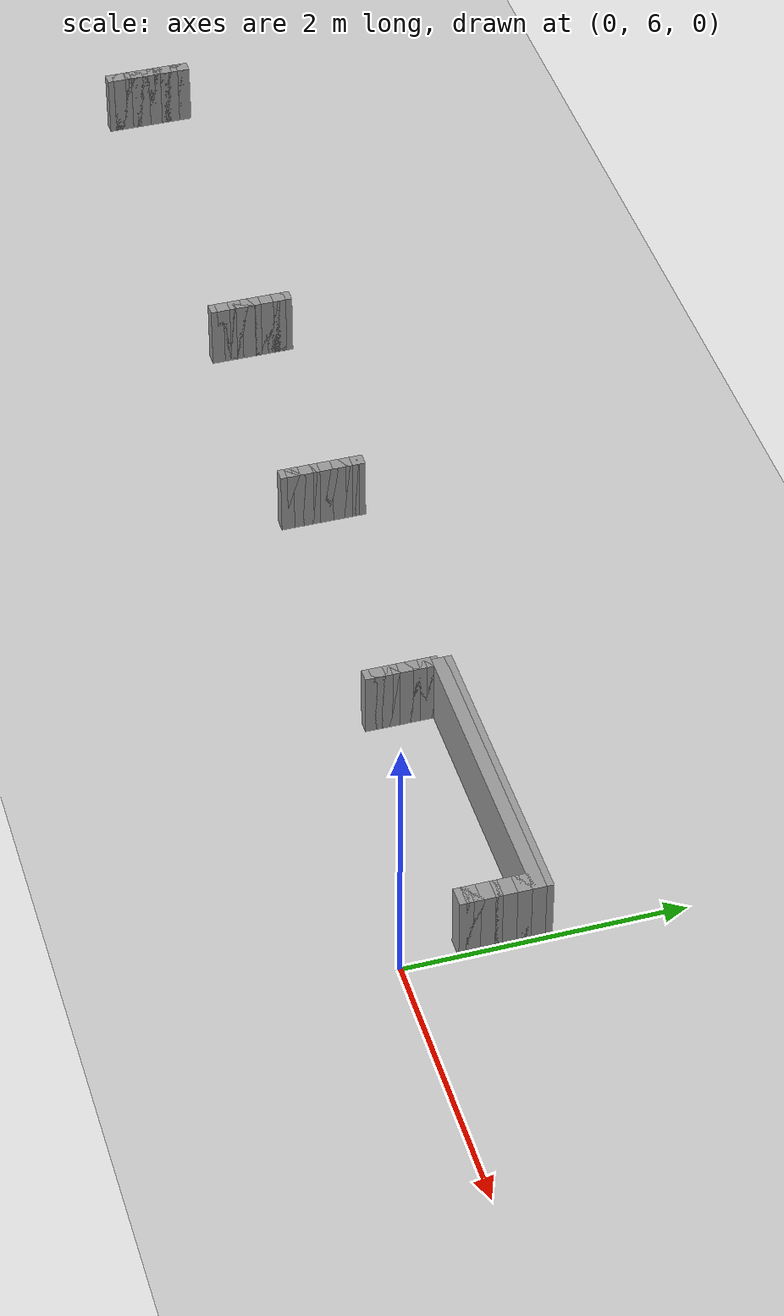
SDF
<sdf version="1.6">
 <world name="GridMap">
  <include><uri>model://sun</uri></include>
  <include><uri>model://ground_plane</uri></include>
  <model name="GridMap">
   <link name="Wall_(198.0,128.0)">
    <collision name="Wall_(198.0,128.0)_Collision">
     <geometry><box><size>0.1 0.1 0.5</size></box></geometry>
     <pose>-9.9 6.4 0.25 0 -0 0</pose>
    </collision>
    <inertial>
     <mass>0.5</mass>
     <pose>0 0.01 0 0 0 0</pose>
     <inertia><ixx>0.004</ixx><ixy>0.001</ixy><ixz>0</ixz><iyy>0.006</iyy><iyz>0</iyz><izz>0.007</izz></inertia>
    </inertial>
    <visual name="Wall_(198.0,128.0)_Visual">
     <geometry><box><size>0.1 0.1 0.5</size></box></geometry>
     <pose>-9.9 6.4 0.25 0 -0 0</pose>
     <material>
      <script><uri>file://media/materials/scripts/gazebo.material</uri><name>Gazebo/Grey</name></script>
      <ambient>1 1 1 1</ambient>
     </material>
     <meta><layer>0</layer></meta>
    </visual>
   </link>
   <link name="Wall_(1.5,129.0)">
    <collision name="Wall_(1.5,129.0)_Collision">
     <geometry><box><size>0.15000000000000002 0.1 0.5</size></box></geometry>
     <pose>-0.07500000000000001 6.45 0.25 0 -0 0</pose>
    </collision>
    <inertial>
     <mass>0.5</mass>
     <pose>0 0.01 0 0 0 0</pose>
     <inertia><ixx>0.004</ixx><ixy>0.001</ixy><ixz>0</ixz><iyy>0.006</iyy><iyz>0</iyz><izz>0.007</izz></inertia>
    </inertial>
    <visual name="Wall_(1.5,129.0)_Visual">
     <geometry><box><size>0.15000000000000002 0.1 0.5</size></box></geometry>
     <pose>-0.07500000000000001 6.45 0.25 0 -0 0</pose>
     <material>
      <script><uri>file://media/materials/scripts/gazebo.material</uri><name>Gazebo/Grey</name></script>
      <ambient>1 1 1 1</ambient>
     </material>
     <meta><layer>0</layer></meta>
    </visual>
   </link>
   <link name="Wall_(45.5,129.0)">
    <collision name="Wall_(45.5,129.0)_Collision">
     <geometry><box><size>0.1 0.1 0.5</size></box></geometry>
     <pose>-2.275 6.45 0.25 0 -0 0</pose>
    </collision>
    <inertial>
     <mass>0.5</mass>
     <pose>0 0.01 0 0 0 0</pose>
     <inertia><ixx>0.004</ixx><ixy>0.001</ixy><ixz>0</ixz><iyy>0.006</iyy><iyz>0</iyz><izz>0.007</izz></inertia>
    </inertial>
    <visual name="Wall_(45.5,129.0)_Visual">
     <geometry><box><size>0.1 0.1 0.5</size></box></geometry>
     <pose>-2.275 6.45 0.25 0 -0 0</pose>
     <material>
      <script><uri>file://media/materials/scripts/gazebo.material</uri><name>Gazebo/Grey</name></script>
      <ambient>1 1 1 1</ambient>
     </material>
     <meta><layer>0</layer></meta>
    </visual>
   </link>
   <link name="Wall_(90.5,129.0)">
    <collision name="Wall_(90.5,129.0)_Collision">
     <geometry><box><size>0.1 0.1 0.5</size></box></geometry>
     <pose>-4.525 6.45 0.25 0 -0 0</pose>
    </collision>
    <inertial>
     <mass>0.5</mass>
     <pose>0 0.01 0 0 0 0</pose>
     <inertia><ixx>0.004</ixx><ixy>0.001</ixy><ixz>0</ixz><iyy>0.006</iyy><iyz>0</iyz><izz>0.007</izz></inertia>
    </inertial>
    <visual name="Wall_(90.5,129.0)_Visual">
     <geometry><box><size>0.1 0.1 0.5</size></box></geometry>
     <pose>-4.525 6.45 0.25 0 -0 0</pose>
     <material>
      <script><uri>file://media/materials/scripts/gazebo.material</uri><name>Gazebo/Grey</name></script>
      <ambient>1 1 1 1</ambient>
     </material>
     <meta><layer>0</layer></meta>
    </visual>
   </link>
   <link name="Wall_(132.0,129.0)">
    <collision name="Wall_(132.0,129.0)_Collision">
     <geometry><box><size>0.1 0.1 0.5</size></box></geometry>
     <pose>-6.6000000000000005 6.45 0.25 0 -0 0</pose>
    </collision>
    <inertial>
     <mass>0.5</mass>
     <pose>0 0.01 0 0 0 0</pose>
     <inertia><ixx>0.004</ixx><ixy>0.001</ixy><ixz>0</ixz><iyy>0.006</iyy><iyz>0</iyz><izz>0.007</izz></inertia>
    </inertial>
    <visual name="Wall_(132.0,129.0)_Visual">
     <geometry><box><size>0.1 0.1 0.5</size></box></geometry>
     <pose>-6.6000000000000005 6.45 0.25 0 -0 0</pose>
     <material>
      <script><uri>file://media/materials/scripts/gazebo.material</uri><name>Gazebo/Grey</name></script>
      <ambient>1 1 1 1</ambient>
     </material>
     <meta><layer>0</layer></meta>
    </visual>
   </link>
   <link name="Wall_(198.0,129.0)">
    <collision name="Wall_(198.0,129.0)_Collision">
     <geometry><box><size>0.1 0.1 0.5</size></box></geometry>
     <pose>-9.9 6.45 0.25 0 -0 0</pose>
    </collision>
    <inertial>
     <mass>0.5</mass>
     <pose>0 0.01 0 0 0 0</pose>
     <inertia><ixx>0.004</ixx><ixy>0.001</ixy><ixz>0</ixz><iyy>0.006</iyy><iyz>0</iyz><izz>0.007</izz></inertia>
    </inertial>
    <visual name="Wall_(198.0,129.0)_Visual">
     <geometry><box><size>0.1 0.1 0.5</size></box></geometry>
     <pose>-9.9 6.45 0.25 0 -0 0</pose>
     <material>
      <script><uri>file://media/materials/scripts/gazebo.material</uri><name>Gazebo/Grey</name></script>
      <ambient>1 1 1 1</ambient>
     </material>
     <meta><layer>0</layer></meta>
    </visual>
   </link>
   <link name="Wall_(1.5,130.0)">
    <collision name="Wall_(1.5,130.0)_Collision">
     <geometry><box><size>0.15000000000000002 0.1 0.5</size></box></geometry>
     <pose>-0.07500000000000001 6.5 0.25 0 -0 0</pose>
    </collision>
    <inertial>
     <mass>0.5</mass>
     <pose>0 0.01 0 0 0 0</pose>
     <inertia><ixx>0.004</ixx><ixy>0.001</ixy><ixz>0</ixz><iyy>0.006</iyy><iyz>0</iyz><izz>0.007</izz></inertia>
    </inertial>
    <visual name="Wall_(1.5,130.0)_Visual">
     <geometry><box><size>0.15000000000000002 0.1 0.5</size></box></geometry>
     <pose>-0.07500000000000001 6.5 0.25 0 -0 0</pose>
     <material>
      <script><uri>file://media/materials/scripts/gazebo.material</uri><name>Gazebo/Grey</name></script>
      <ambient>1 1 1 1</ambient>
     </material>
     <meta><layer>0</layer></meta>
    </visual>
   </link>
   <link name="Wall_(45.5,130.0)">
    <collision name="Wall_(45.5,130.0)_Collision">
     <geometry><box><size>0.1 0.1 0.5</size></box></geometry>
     <pose>-2.275 6.5 0.25 0 -0 0</pose>
    </collision>
    <inertial>
     <mass>0.5</mass>
     <pose>0 0.01 0 0 0 0</pose>
     <inertia><ixx>0.004</ixx><ixy>0.001</ixy><ixz>0</ixz><iyy>0.006</iyy><iyz>0</iyz><izz>0.007</izz></inertia>
    </inertial>
    <visual name="Wall_(45.5,130.0)_Visual">
     <geometry><box><size>0.1 0.1 0.5</size></box></geometry>
     <pose>-2.275 6.5 0.25 0 -0 0</pose>
     <material>
      <script><uri>file://media/materials/scripts/gazebo.material</uri><name>Gazebo/Grey</name></script>
      <ambient>1 1 1 1</ambient>
     </material>
     <meta><layer>0</layer></meta>
    </visual>
   </link>
   <link name="Wall_(90.5,130.0)">
    <collision name="Wall_(90.5,130.0)_Collision">
     <geometry><box><size>0.1 0.1 0.5</size></box></geometry>
     <pose>-4.525 6.5 0.25 0 -0 0</pose>
    </collision>
    <inertial>
     <mass>0.5</mass>
     <pose>0 0.01 0 0 0 0</pose>
     <inertia><ixx>0.004</ixx><ixy>0.001</ixy><ixz>0</ixz><iyy>0.006</iyy><iyz>0</iyz><izz>0.007</izz></inertia>
    </inertial>
    <visual name="Wall_(90.5,130.0)_Visual">
     <geometry><box><size>0.1 0.1 0.5</size></box></geometry>
     <pose>-4.525 6.5 0.25 0 -0 0</pose>
     <material>
      <script><uri>file://media/materials/scripts/gazebo.material</uri><name>Gazebo/Grey</name></script>
      <ambient>1 1 1 1</ambient>
     </material>
     <meta><layer>0</layer></meta>
    </visual>
   </link>
   <link name="Wall_(132.0,130.0)">
    <collision name="Wall_(132.0,130.0)_Collision">
     <geometry><box><size>0.1 0.1 0.5</size></box></geometry>
     <pose>-6.6000000000000005 6.5 0.25 0 -0 0</pose>
    </collision>
    <inertial>
     <mass>0.5</mass>
     <pose>0 0.01 0 0 0 0</pose>
     <inertia><ixx>0.004</ixx><ixy>0.001</ixy><ixz>0</ixz><iyy>0.006</iyy><iyz>0</iyz><izz>0.007</izz></inertia>
    </inertial>
    <visual name="Wall_(132.0,130.0)_Visual">
     <geometry><box><size>0.1 0.1 0.5</size></box></geometry>
     <pose>-6.6000000000000005 6.5 0.25 0 -0 0</pose>
     <material>
      <script><uri>file://media/materials/scripts/gazebo.material</uri><name>Gazebo/Grey</name></script>
      <ambient>1 1 1 1</ambient>
     </material>
     <meta><layer>0</layer></meta>
    </visual>
   </link>
   <link name="Wall_(198.0,130.0)">
    <collision name="Wall_(198.0,130.0)_Collision">
     <geometry><box><size>0.1 0.1 0.5</size></box></geometry>
     <pose>-9.9 6.5 0.25 0 -0 0</pose>
    </collision>
    <inertial>
     <mass>0.5</mass>
     <pose>0 0.01 0 0 0 0</pose>
     <inertia><ixx>0.004</ixx><ixy>0.001</ixy><ixz>0</ixz><iyy>0.006</iyy><iyz>0</iyz><izz>0.007</izz></inertia>
    </inertial>
    <visual name="Wall_(198.0,130.0)_Visual">
     <geometry><box><size>0.1 0.1 0.5</size></box></geometry>
     <pose>-9.9 6.5 0.25 0 -0 0</pose>
     <material>
      <script><uri>file://media/materials/scripts/gazebo.material</uri><name>Gazebo/Grey</name></script>
      <ambient>1 1 1 1</ambient>
     </material>
     <meta><layer>0</layer></meta>
    </visual>
   </link>
   <link name="Wall_(1.5,131.0)">
    <collision name="Wall_(1.5,131.0)_Collision">
     <geometry><box><size>0.15000000000000002 0.1 0.5</size></box></geometry>
     <pose>-0.07500000000000001 6.550000000000001 0.25 0 -0 0</pose>
    </collision>
    <inertial>
     <mass>0.5</mass>
     <pose>0 0.01 0 0 0 0</pose>
     <inertia><ixx>0.004</ixx><ixy>0.001</ixy><ixz>0</ixz><iyy>0.006</iyy><iyz>0</iyz><izz>0.007</izz></inertia>
    </inertial>
    <visual name="Wall_(1.5,131.0)_Visual">
     <geometry><box><size>0.15000000000000002 0.1 0.5</size></box></geometry>
     <pose>-0.07500000000000001 6.550000000000001 0.25 0 -0 0</pose>
     <material>
      <script><uri>file://media/materials/scripts/gazebo.material</uri><name>Gazebo/Grey</name></script>
      <ambient>1 1 1 1</ambient>
     </material>
     <meta><layer>0</layer></meta>
    </visual>
   </link>
   <link name="Wall_(45.5,131.0)">
    <collision name="Wall_(45.5,131.0)_Collision">
     <geometry><box><size>0.1 0.1 0.5</size></box></geometry>
     <pose>-2.275 6.550000000000001 0.25 0 -0 0</pose>
    </collision>
    <inertial>
     <mass>0.5</mass>
     <pose>0 0.01 0 0 0 0</pose>
     <inertia><ixx>0.004</ixx><ixy>0.001</ixy><ixz>0</ixz><iyy>0.006</iyy><iyz>0</iyz><izz>0.007</izz></inertia>
    </inertial>
    <visual name="Wall_(45.5,131.0)_Visual">
     <geometry><box><size>0.1 0.1 0.5</size></box></geometry>
     <pose>-2.275 6.550000000000001 0.25 0 -0 0</pose>
     <material>
      <script><uri>file://media/materials/scripts/gazebo.material</uri><name>Gazebo/Grey</name></script>
      <ambient>1 1 1 1</ambient>
     </material>
     <meta><layer>0</layer></meta>
    </visual>
   </link>
   <link name="Wall_(90.5,131.0)">
    <collision name="Wall_(90.5,131.0)_Collision">
     <geometry><box><size>0.1 0.1 0.5</size></box></geometry>
     <pose>-4.525 6.550000000000001 0.25 0 -0 0</pose>
    </collision>
    <inertial>
     <mass>0.5</mass>
     <pose>0 0.01 0 0 0 0</pose>
     <inertia><ixx>0.004</ixx><ixy>0.001</ixy><ixz>0</ixz><iyy>0.006</iyy><iyz>0</iyz><izz>0.007</izz></inertia>
    </inertial>
    <visual name="Wall_(90.5,131.0)_Visual">
     <geometry><box><size>0.1 0.1 0.5</size></box></geometry>
     <pose>-4.525 6.550000000000001 0.25 0 -0 0</pose>
     <material>
      <script><uri>file://media/materials/scripts/gazebo.material</uri><name>Gazebo/Grey</name></script>
      <ambient>1 1 1 1</ambient>
     </material>
     <meta><layer>0</layer></meta>
    </visual>
   </link>
   <link name="Wall_(132.0,131.0)">
    <collision name="Wall_(132.0,131.0)_Collision">
     <geometry><box><size>0.1 0.1 0.5</size></box></geometry>
     <pose>-6.6000000000000005 6.550000000000001 0.25 0 -0 0</pose>
    </collision>
    <inertial>
     <mass>0.5</mass>
     <pose>0 0.01 0 0 0 0</pose>
     <inertia><ixx>0.004</ixx><ixy>0.001</ixy><ixz>0</ixz><iyy>0.006</iyy><iyz>0</iyz><izz>0.007</izz></inertia>
    </inertial>
    <visual name="Wall_(132.0,131.0)_Visual">
     <geometry><box><size>0.1 0.1 0.5</size></box></geometry>
     <pose>-6.6000000000000005 6.550000000000001 0.25 0 -0 0</pose>
     <material>
      <script><uri>file://media/materials/scripts/gazebo.material</uri><name>Gazebo/Grey</name></script>
      <ambient>1 1 1 1</ambient>
     </material>
     <meta><layer>0</layer></meta>
    </visual>
   </link>
   <link name="Wall_(198.0,131.0)">
    <collision name="Wall_(198.0,131.0)_Collision">
     <geometry><box><size>0.1 0.1 0.5</size></box></geometry>
     <pose>-9.9 6.550000000000001 0.25 0 -0 0</pose>
    </collision>
    <inertial>
     <mass>0.5</mass>
     <pose>0 0.01 0 0 0 0</pose>
     <inertia><ixx>0.004</ixx><ixy>0.001</ixy><ixz>0</ixz><iyy>0.006</iyy><iyz>0</iyz><izz>0.007</izz></inertia>
    </inertial>
    <visual name="Wall_(198.0,131.0)_Visual">
     <geometry><box><size>0.1 0.1 0.5</size></box></geometry>
     <pose>-9.9 6.550000000000001 0.25 0 -0 0</pose>
     <material>
      <script><uri>file://media/materials/scripts/gazebo.material</uri><name>Gazebo/Grey</name></script>
      <ambient>1 1 1 1</ambient>
     </material>
     <meta><layer>0</layer></meta>
    </visual>
   </link>
   <link name="Wall_(1.5,132.0)">
    <collision name="Wall_(1.5,132.0)_Collision">
     <geometry><box><size>0.15000000000000002 0.1 0.5</size></box></geometry>
     <pose>-0.07500000000000001 6.6000000000000005 0.25 0 -0 0</pose>
    </collision>
    <inertial>
     <mass>0.5</mass>
     <pose>0 0.01 0 0 0 0</pose>
     <inertia><ixx>0.004</ixx><ixy>0.001</ixy><ixz>0</ixz><iyy>0.006</iyy><iyz>0</iyz><izz>0.007</izz></inertia>
    </inertial>
    <visual name="Wall_(1.5,132.0)_Visual">
     <geometry><box><size>0.15000000000000002 0.1 0.5</size></box></geometry>
     <pose>-0.07500000000000001 6.6000000000000005 0.25 0 -0 0</pose>
     <material>
      <script><uri>file://media/materials/scripts/gazebo.material</uri><name>Gazebo/Grey</name></script>
      <ambient>1 1 1 1</ambient>
     </material>
     <meta><layer>0</layer></meta>
    </visual>
   </link>
   <link name="Wall_(45.5,132.0)">
    <collision name="Wall_(45.5,132.0)_Collision">
     <geometry><box><size>0.1 0.1 0.5</size></box></geometry>
     <pose>-2.275 6.6000000000000005 0.25 0 -0 0</pose>
    </collision>
    <inertial>
     <mass>0.5</mass>
     <pose>0 0.01 0 0 0 0</pose>
     <inertia><ixx>0.004</ixx><ixy>0.001</ixy><ixz>0</ixz><iyy>0.006</iyy><iyz>0</iyz><izz>0.007</izz></inertia>
    </inertial>
    <visual name="Wall_(45.5,132.0)_Visual">
     <geometry><box><size>0.1 0.1 0.5</size></box></geometry>
     <pose>-2.275 6.6000000000000005 0.25 0 -0 0</pose>
     <material>
      <script><uri>file://media/materials/scripts/gazebo.material</uri><name>Gazebo/Grey</name></script>
      <ambient>1 1 1 1</ambient>
     </material>
     <meta><layer>0</layer></meta>
    </visual>
   </link>
   <link name="Wall_(90.5,132.0)">
    <collision name="Wall_(90.5,132.0)_Collision">
     <geometry><box><size>0.1 0.1 0.5</size></box></geometry>
     <pose>-4.525 6.6000000000000005 0.25 0 -0 0</pose>
    </collision>
    <inertial>
     <mass>0.5</mass>
     <pose>0 0.01 0 0 0 0</pose>
     <inertia><ixx>0.004</ixx><ixy>0.001</ixy><ixz>0</ixz><iyy>0.006</iyy><iyz>0</iyz><izz>0.007</izz></inertia>
    </inertial>
    <visual name="Wall_(90.5,132.0)_Visual">
     <geometry><box><size>0.1 0.1 0.5</size></box></geometry>
     <pose>-4.525 6.6000000000000005 0.25 0 -0 0</pose>
     <material>
      <script><uri>file://media/materials/scripts/gazebo.material</uri><name>Gazebo/Grey</name></script>
      <ambient>1 1 1 1</ambient>
     </material>
     <meta><layer>0</layer></meta>
    </visual>
   </link>
   <link name="Wall_(132.0,132.0)">
    <collision name="Wall_(132.0,132.0)_Collision">
     <geometry><box><size>0.1 0.1 0.5</size></box></geometry>
     <pose>-6.6000000000000005 6.6000000000000005 0.25 0 -0 0</pose>
    </collision>
    <inertial>
     <mass>0.5</mass>
     <pose>0 0.01 0 0 0 0</pose>
     <inertia><ixx>0.004</ixx><ixy>0.001</ixy><ixz>0</ixz><iyy>0.006</iyy><iyz>0</iyz><izz>0.007</izz></inertia>
    </inertial>
    <visual name="Wall_(132.0,132.0)_Visual">
     <geometry><box><size>0.1 0.1 0.5</size></box></geometry>
     <pose>-6.6000000000000005 6.6000000000000005 0.25 0 -0 0</pose>
     <material>
      <script><uri>file://media/materials/scripts/gazebo.material</uri><name>Gazebo/Grey</name></script>
      <ambient>1 1 1 1</ambient>
     </material>
     <meta><layer>0</layer></meta>
    </visual>
   </link>
   <link name="Wall_(198.0,132.0)">
    <collision name="Wall_(198.0,132.0)_Collision">
     <geometry><box><size>0.1 0.1 0.5</size></box></geometry>
     <pose>-9.9 6.6000000000000005 0.25 0 -0 0</pose>
    </collision>
    <inertial>
     <mass>0.5</mass>
     <pose>0 0.01 0 0 0 0</pose>
     <inertia><ixx>0.004</ixx><ixy>0.001</ixy><ixz>0</ixz><iyy>0.006</iyy><iyz>0</iyz><izz>0.007</izz></inertia>
    </inertial>
    <visual name="Wall_(198.0,132.0)_Visual">
     <geometry><box><size>0.1 0.1 0.5</size></box></geometry>
     <pose>-9.9 6.6000000000000005 0.25 0 -0 0</pose>
     <material>
      <script><uri>file://media/materials/scripts/gazebo.material</uri><name>Gazebo/Grey</name></script>
      <ambient>1 1 1 1</ambient>
     </material>
     <meta><layer>0</layer></meta>
    </visual>
   </link>
   <link name="Wall_(1.5,133.0)">
    <collision name="Wall_(1.5,133.0)_Collision">
     <geometry><box><size>0.15000000000000002 0.1 0.5</size></box></geometry>
     <pose>-0.07500000000000001 6.65 0.25 0 -0 0</pose>
    </collision>
    <inertial>
     <mass>0.5</mass>
     <pose>0 0.01 0 0 0 0</pose>
     <inertia><ixx>0.004</ixx><ixy>0.001</ixy><ixz>0</ixz><iyy>0.006</iyy><iyz>0</iyz><izz>0.007</izz></inertia>
    </inertial>
    <visual name="Wall_(1.5,133.0)_Visual">
     <geometry><box><size>0.15000000000000002 0.1 0.5</size></box></geometry>
     <pose>-0.07500000000000001 6.65 0.25 0 -0 0</pose>
     <material>
      <script><uri>file://media/materials/scripts/gazebo.material</uri><name>Gazebo/Grey</name></script>
      <ambient>1 1 1 1</ambient>
     </material>
     <meta><layer>0</layer></meta>
    </visual>
   </link>
   <link name="Wall_(45.5,133.0)">
    <collision name="Wall_(45.5,133.0)_Collision">
     <geometry><box><size>0.1 0.1 0.5</size></box></geometry>
     <pose>-2.275 6.65 0.25 0 -0 0</pose>
    </collision>
    <inertial>
     <mass>0.5</mass>
     <pose>0 0.01 0 0 0 0</pose>
     <inertia><ixx>0.004</ixx><ixy>0.001</ixy><ixz>0</ixz><iyy>0.006</iyy><iyz>0</iyz><izz>0.007</izz></inertia>
    </inertial>
    <visual name="Wall_(45.5,133.0)_Visual">
     <geometry><box><size>0.1 0.1 0.5</size></box></geometry>
     <pose>-2.275 6.65 0.25 0 -0 0</pose>
     <material>
      <script><uri>file://media/materials/scripts/gazebo.material</uri><name>Gazebo/Grey</name></script>
      <ambient>1 1 1 1</ambient>
     </material>
     <meta><layer>0</layer></meta>
    </visual>
   </link>
   <link name="Wall_(90.5,133.0)">
    <collision name="Wall_(90.5,133.0)_Collision">
     <geometry><box><size>0.1 0.1 0.5</size></box></geometry>
     <pose>-4.525 6.65 0.25 0 -0 0</pose>
    </collision>
    <inertial>
     <mass>0.5</mass>
     <pose>0 0.01 0 0 0 0</pose>
     <inertia><ixx>0.004</ixx><ixy>0.001</ixy><ixz>0</ixz><iyy>0.006</iyy><iyz>0</iyz><izz>0.007</izz></inertia>
    </inertial>
    <visual name="Wall_(90.5,133.0)_Visual">
     <geometry><box><size>0.1 0.1 0.5</size></box></geometry>
     <pose>-4.525 6.65 0.25 0 -0 0</pose>
     <material>
      <script><uri>file://media/materials/scripts/gazebo.material</uri><name>Gazebo/Grey</name></script>
      <ambient>1 1 1 1</ambient>
     </material>
     <meta><layer>0</layer></meta>
    </visual>
   </link>
   <link name="Wall_(132.0,133.0)">
    <collision name="Wall_(132.0,133.0)_Collision">
     <geometry><box><size>0.1 0.1 0.5</size></box></geometry>
     <pose>-6.6000000000000005 6.65 0.25 0 -0 0</pose>
    </collision>
    <inertial>
     <mass>0.5</mass>
     <pose>0 0.01 0 0 0 0</pose>
     <inertia><ixx>0.004</ixx><ixy>0.001</ixy><ixz>0</ixz><iyy>0.006</iyy><iyz>0</iyz><izz>0.007</izz></inertia>
    </inertial>
    <visual name="Wall_(132.0,133.0)_Visual">
     <geometry><box><size>0.1 0.1 0.5</size></box></geometry>
     <pose>-6.6000000000000005 6.65 0.25 0 -0 0</pose>
     <material>
      <script><uri>file://media/materials/scripts/gazebo.material</uri><name>Gazebo/Grey</name></script>
      <ambient>1 1 1 1</ambient>
     </material>
     <meta><layer>0</layer></meta>
    </visual>
   </link>
   <link name="Wall_(198.0,133.0)">
    <collision name="Wall_(198.0,133.0)_Collision">
     <geometry><box><size>0.1 0.1 0.5</size></box></geometry>
     <pose>-9.9 6.65 0.25 0 -0 0</pose>
    </collision>
    <inertial>
     <mass>0.5</mass>
     <pose>0 0.01 0 0 0 0</pose>
     <inertia><ixx>0.004</ixx><ixy>0.001</ixy><ixz>0</ixz><iyy>0.006</iyy><iyz>0</iyz><izz>0.007</izz></inertia>
    </inertial>
    <visual name="Wall_(198.0,133.0)_Visual">
     <geometry><box><size>0.1 0.1 0.5</size></box></geometry>
     <pose>-9.9 6.65 0.25 0 -0 0</pose>
     <material>
      <script><uri>file://media/materials/scripts/gazebo.material</uri><name>Gazebo/Grey</name></script>
      <ambient>1 1 1 1</ambient>
     </material>
     <meta><layer>0</layer></meta>
    </visual>
   </link>
   <link name="Wall_(1.5,134.0)">
    <collision name="Wall_(1.5,134.0)_Collision">
     <geometry><box><size>0.15000000000000002 0.1 0.5</size></box></geometry>
     <pose>-0.07500000000000001 6.7 0.25 0 -0 0</pose>
    </collision>
    <inertial>
     <mass>0.5</mass>
     <pose>0 0.01 0 0 0 0</pose>
     <inertia><ixx>0.004</ixx><ixy>0.001</ixy><ixz>0</ixz><iyy>0.006</iyy><iyz>0</iyz><izz>0.007</izz></inertia>
    </inertial>
    <visual name="Wall_(1.5,134.0)_Visual">
     <geometry><box><size>0.15000000000000002 0.1 0.5</size></box></geometry>
     <pose>-0.07500000000000001 6.7 0.25 0 -0 0</pose>
     <material>
      <script><uri>file://media/materials/scripts/gazebo.material</uri><name>Gazebo/Grey</name></script>
      <ambient>1 1 1 1</ambient>
     </material>
     <meta><layer>0</layer></meta>
    </visual>
   </link>
   <link name="Wall_(45.5,134.0)">
    <collision name="Wall_(45.5,134.0)_Collision">
     <geometry><box><size>0.1 0.1 0.5</size></box></geometry>
     <pose>-2.275 6.7 0.25 0 -0 0</pose>
    </collision>
    <inertial>
     <mass>0.5</mass>
     <pose>0 0.01 0 0 0 0</pose>
     <inertia><ixx>0.004</ixx><ixy>0.001</ixy><ixz>0</ixz><iyy>0.006</iyy><iyz>0</iyz><izz>0.007</izz></inertia>
    </inertial>
    <visual name="Wall_(45.5,134.0)_Visual">
     <geometry><box><size>0.1 0.1 0.5</size></box></geometry>
     <pose>-2.275 6.7 0.25 0 -0 0</pose>
     <material>
      <script><uri>file://media/materials/scripts/gazebo.material</uri><name>Gazebo/Grey</name></script>
      <ambient>1 1 1 1</ambient>
     </material>
     <meta><layer>0</layer></meta>
    </visual>
   </link>
   <link name="Wall_(90.5,134.0)">
    <collision name="Wall_(90.5,134.0)_Collision">
     <geometry><box><size>0.1 0.1 0.5</size></box></geometry>
     <pose>-4.525 6.7 0.25 0 -0 0</pose>
    </collision>
    <inertial>
     <mass>0.5</mass>
     <pose>0 0.01 0 0 0 0</pose>
     <inertia><ixx>0.004</ixx><ixy>0.001</ixy><ixz>0</ixz><iyy>0.006</iyy><iyz>0</iyz><izz>0.007</izz></inertia>
    </inertial>
    <visual name="Wall_(90.5,134.0)_Visual">
     <geometry><box><size>0.1 0.1 0.5</size></box></geometry>
     <pose>-4.525 6.7 0.25 0 -0 0</pose>
     <material>
      <script><uri>file://media/materials/scripts/gazebo.material</uri><name>Gazebo/Grey</name></script>
      <ambient>1 1 1 1</ambient>
     </material>
     <meta><layer>0</layer></meta>
    </visual>
   </link>
   <link name="Wall_(132.0,134.0)">
    <collision name="Wall_(132.0,134.0)_Collision">
     <geometry><box><size>0.1 0.1 0.5</size></box></geometry>
     <pose>-6.6000000000000005 6.7 0.25 0 -0 0</pose>
    </collision>
    <inertial>
     <mass>0.5</mass>
     <pose>0 0.01 0 0 0 0</pose>
     <inertia><ixx>0.004</ixx><ixy>0.001</ixy><ixz>0</ixz><iyy>0.006</iyy><iyz>0</iyz><izz>0.007</izz></inertia>
    </inertial>
    <visual name="Wall_(132.0,134.0)_Visual">
     <geometry><box><size>0.1 0.1 0.5</size></box></geometry>
     <pose>-6.6000000000000005 6.7 0.25 0 -0 0</pose>
     <material>
      <script><uri>file://media/materials/scripts/gazebo.material</uri><name>Gazebo/Grey</name></script>
      <ambient>1 1 1 1</ambient>
     </material>
     <meta><layer>0</layer></meta>
    </visual>
   </link>
   <link name="Wall_(198.0,134.0)">
    <collision name="Wall_(198.0,134.0)_Collision">
     <geometry><box><size>0.1 0.1 0.5</size></box></geometry>
     <pose>-9.9 6.7 0.25 0 -0 0</pose>
    </collision>
    <inertial>
     <mass>0.5</mass>
     <pose>0 0.01 0 0 0 0</pose>
     <inertia><ixx>0.004</ixx><ixy>0.001</ixy><ixz>0</ixz><iyy>0.006</iyy><iyz>0</iyz><izz>0.007</izz></inertia>
    </inertial>
    <visual name="Wall_(198.0,134.0)_Visual">
     <geometry><box><size>0.1 0.1 0.5</size></box></geometry>
     <pose>-9.9 6.7 0.25 0 -0 0</pose>
     <material>
      <script><uri>file://media/materials/scripts/gazebo.material</uri><name>Gazebo/Grey</name></script>
      <ambient>1 1 1 1</ambient>
     </material>
     <meta><layer>0</layer></meta>
    </visual>
   </link>
   <link name="Wall_(1.5,135.0)">
    <collision name="Wall_(1.5,135.0)_Collision">
     <geometry><box><size>0.15000000000000002 0.1 0.5</size></box></geometry>
     <pose>-0.07500000000000001 6.75 0.25 0 -0 0</pose>
    </collision>
    <inertial>
     <mass>0.5</mass>
     <pose>0 0.01 0 0 0 0</pose>
     <inertia><ixx>0.004</ixx><ixy>0.001</ixy><ixz>0</ixz><iyy>0.006</iyy><iyz>0</iyz><izz>0.007</izz></inertia>
    </inertial>
    <visual name="Wall_(1.5,135.0)_Visual">
     <geometry><box><size>0.15000000000000002 0.1 0.5</size></box></geometry>
     <pose>-0.07500000000000001 6.75 0.25 0 -0 0</pose>
     <material>
      <script><uri>file://media/materials/scripts/gazebo.material</uri><name>Gazebo/Grey</name></script>
      <ambient>1 1 1 1</ambient>
     </material>
     <meta><layer>0</layer></meta>
    </visual>
   </link>
   <link name="Wall_(45.5,135.0)">
    <collision name="Wall_(45.5,135.0)_Collision">
     <geometry><box><size>0.1 0.1 0.5</size></box></geometry>
     <pose>-2.275 6.75 0.25 0 -0 0</pose>
    </collision>
    <inertial>
     <mass>0.5</mass>
     <pose>0 0.01 0 0 0 0</pose>
     <inertia><ixx>0.004</ixx><ixy>0.001</ixy><ixz>0</ixz><iyy>0.006</iyy><iyz>0</iyz><izz>0.007</izz></inertia>
    </inertial>
    <visual name="Wall_(45.5,135.0)_Visual">
     <geometry><box><size>0.1 0.1 0.5</size></box></geometry>
     <pose>-2.275 6.75 0.25 0 -0 0</pose>
     <material>
      <script><uri>file://media/materials/scripts/gazebo.material</uri><name>Gazebo/Grey</name></script>
      <ambient>1 1 1 1</ambient>
     </material>
     <meta><layer>0</layer></meta>
    </visual>
   </link>
   <link name="Wall_(90.5,135.0)">
    <collision name="Wall_(90.5,135.0)_Collision">
     <geometry><box><size>0.1 0.1 0.5</size></box></geometry>
     <pose>-4.525 6.75 0.25 0 -0 0</pose>
    </collision>
    <inertial>
     <mass>0.5</mass>
     <pose>0 0.01 0 0 0 0</pose>
     <inertia><ixx>0.004</ixx><ixy>0.001</ixy><ixz>0</ixz><iyy>0.006</iyy><iyz>0</iyz><izz>0.007</izz></inertia>
    </inertial>
    <visual name="Wall_(90.5,135.0)_Visual">
     <geometry><box><size>0.1 0.1 0.5</size></box></geometry>
     <pose>-4.525 6.75 0.25 0 -0 0</pose>
     <material>
      <script><uri>file://media/materials/scripts/gazebo.material</uri><name>Gazebo/Grey</name></script>
      <ambient>1 1 1 1</ambient>
     </material>
     <meta><layer>0</layer></meta>
    </visual>
   </link>
   <link name="Wall_(132.0,135.0)">
    <collision name="Wall_(132.0,135.0)_Collision">
     <geometry><box><size>0.1 0.1 0.5</size></box></geometry>
     <pose>-6.6000000000000005 6.75 0.25 0 -0 0</pose>
    </collision>
    <inertial>
     <mass>0.5</mass>
     <pose>0 0.01 0 0 0 0</pose>
     <inertia><ixx>0.004</ixx><ixy>0.001</ixy><ixz>0</ixz><iyy>0.006</iyy><iyz>0</iyz><izz>0.007</izz></inertia>
    </inertial>
    <visual name="Wall_(132.0,135.0)_Visual">
     <geometry><box><size>0.1 0.1 0.5</size></box></geometry>
     <pose>-6.6000000000000005 6.75 0.25 0 -0 0</pose>
     <material>
      <script><uri>file://media/materials/scripts/gazebo.material</uri><name>Gazebo/Grey</name></script>
      <ambient>1 1 1 1</ambient>
     </material>
     <meta><layer>0</layer></meta>
    </visual>
   </link>
   <link name="Wall_(198.0,135.0)">
    <collision name="Wall_(198.0,135.0)_Collision">
     <geometry><box><size>0.1 0.1 0.5</size></box></geometry>
     <pose>-9.9 6.75 0.25 0 -0 0</pose>
    </collision>
    <inertial>
     <mass>0.5</mass>
     <pose>0 0.01 0 0 0 0</pose>
     <inertia><ixx>0.004</ixx><ixy>0.001</ixy><ixz>0</ixz><iyy>0.006</iyy><iyz>0</iyz><izz>0.007</izz></inertia>
    </inertial>
    <visual name="Wall_(198.0,135.0)_Visual">
     <geometry><box><size>0.1 0.1 0.5</size></box></geometry>
     <pose>-9.9 6.75 0.25 0 -0 0</pose>
     <material>
      <script><uri>file://media/materials/scripts/gazebo.material</uri><name>Gazebo/Grey</name></script>
      <ambient>1 1 1 1</ambient>
     </material>
     <meta><layer>0</layer></meta>
    </visual>
   </link>
   <link name="Wall_(1.5,136.0)">
    <collision name="Wall_(1.5,136.0)_Collision">
     <geometry><box><size>0.15000000000000002 0.1 0.5</size></box></geometry>
     <pose>-0.07500000000000001 6.800000000000001 0.25 0 -0 0</pose>
    </collision>
    <inertial>
     <mass>0.5</mass>
     <pose>0 0.01 0 0 0 0</pose>
     <inertia><ixx>0.004</ixx><ixy>0.001</ixy><ixz>0</ixz><iyy>0.006</iyy><iyz>0</iyz><izz>0.007</izz></inertia>
    </inertial>
    <visual name="Wall_(1.5,136.0)_Visual">
     <geometry><box><size>0.15000000000000002 0.1 0.5</size></box></geometry>
     <pose>-0.07500000000000001 6.800000000000001 0.25 0 -0 0</pose>
     <material>
      <script><uri>file://media/materials/scripts/gazebo.material</uri><name>Gazebo/Grey</name></script>
      <ambient>1 1 1 1</ambient>
     </material>
     <meta><layer>0</layer></meta>
    </visual>
   </link>
   <link name="Wall_(45.5,136.0)">
    <collision name="Wall_(45.5,136.0)_Collision">
     <geometry><box><size>0.1 0.1 0.5</size></box></geometry>
     <pose>-2.275 6.800000000000001 0.25 0 -0 0</pose>
    </collision>
    <inertial>
     <mass>0.5</mass>
     <pose>0 0.01 0 0 0 0</pose>
     <inertia><ixx>0.004</ixx><ixy>0.001</ixy><ixz>0</ixz><iyy>0.006</iyy><iyz>0</iyz><izz>0.007</izz></inertia>
    </inertial>
    <visual name="Wall_(45.5,136.0)_Visual">
     <geometry><box><size>0.1 0.1 0.5</size></box></geometry>
     <pose>-2.275 6.800000000000001 0.25 0 -0 0</pose>
     <material>
      <script><uri>file://media/materials/scripts/gazebo.material</uri><name>Gazebo/Grey</name></script>
      <ambient>1 1 1 1</ambient>
     </material>
     <meta><layer>0</layer></meta>
    </visual>
   </link>
   <link name="Wall_(90.5,136.0)">
    <collision name="Wall_(90.5,136.0)_Collision">
     <geometry><box><size>0.1 0.1 0.5</size></box></geometry>
     <pose>-4.525 6.800000000000001 0.25 0 -0 0</pose>
    </collision>
    <inertial>
     <mass>0.5</mass>
     <pose>0 0.01 0 0 0 0</pose>
     <inertia><ixx>0.004</ixx><ixy>0.001</ixy><ixz>0</ixz><iyy>0.006</iyy><iyz>0</iyz><izz>0.007</izz></inertia>
    </inertial>
    <visual name="Wall_(90.5,136.0)_Visual">
     <geometry><box><size>0.1 0.1 0.5</size></box></geometry>
     <pose>-4.525 6.800000000000001 0.25 0 -0 0</pose>
     <material>
      <script><uri>file://media/materials/scripts/gazebo.material</uri><name>Gazebo/Grey</name></script>
      <ambient>1 1 1 1</ambient>
     </material>
     <meta><layer>0</layer></meta>
    </visual>
   </link>
   <link name="Wall_(132.0,136.0)">
    <collision name="Wall_(132.0,136.0)_Collision">
     <geometry><box><size>0.1 0.1 0.5</size></box></geometry>
     <pose>-6.6000000000000005 6.800000000000001 0.25 0 -0 0</pose>
    </collision>
    <inertial>
     <mass>0.5</mass>
     <pose>0 0.01 0 0 0 0</pose>
     <inertia><ixx>0.004</ixx><ixy>0.001</ixy><ixz>0</ixz><iyy>0.006</iyy><iyz>0</iyz><izz>0.007</izz></inertia>
    </inertial>
    <visual name="Wall_(132.0,136.0)_Visual">
     <geometry><box><size>0.1 0.1 0.5</size></box></geometry>
     <pose>-6.6000000000000005 6.800000000000001 0.25 0 -0 0</pose>
     <material>
      <script><uri>file://media/materials/scripts/gazebo.material</uri><name>Gazebo/Grey</name></script>
      <ambient>1 1 1 1</ambient>
     </material>
     <meta><layer>0</layer></meta>
    </visual>
   </link>
   <link name="Wall_(198.0,136.0)">
    <collision name="Wall_(198.0,136.0)_Collision">
     <geometry><box><size>0.1 0.1 0.5</size></box></geometry>
     <pose>-9.9 6.800000000000001 0.25 0 -0 0</pose>
    </collision>
    <inertial>
     <mass>0.5</mass>
     <pose>0 0.01 0 0 0 0</pose>
     <inertia><ixx>0.004</ixx><ixy>0.001</ixy><ixz>0</ixz><iyy>0.006</iyy><iyz>0</iyz><izz>0.007</izz></inertia>
    </inertial>
    <visual name="Wall_(198.0,136.0)_Visual">
     <geometry><box><size>0.1 0.1 0.5</size></box></geometry>
     <pose>-9.9 6.800000000000001 0.25 0 -0 0</pose>
     <material>
      <script><uri>file://media/materials/scripts/gazebo.material</uri><name>Gazebo/Grey</name></script>
      <ambient>1 1 1 1</ambient>
     </material>
     <meta><layer>0</layer></meta>
    </visual>
   </link>
   <link name="Wall_(1.5,137.0)">
    <collision name="Wall_(1.5,137.0)_Collision">
     <geometry><box><size>0.15000000000000002 0.1 0.5</size></box></geometry>
     <pose>-0.07500000000000001 6.8500000000000005 0.25 0 -0 0</pose>
    </collision>
    <inertial>
     <mass>0.5</mass>
     <pose>0 0.01 0 0 0 0</pose>
     <inertia><ixx>0.004</ixx><ixy>0.001</ixy><ixz>0</ixz><iyy>0.006</iyy><iyz>0</iyz><izz>0.007</izz></inertia>
    </inertial>
    <visual name="Wall_(1.5,137.0)_Visual">
     <geometry><box><size>0.15000000000000002 0.1 0.5</size></box></geometry>
     <pose>-0.07500000000000001 6.8500000000000005 0.25 0 -0 0</pose>
     <material>
      <script><uri>file://media/materials/scripts/gazebo.material</uri><name>Gazebo/Grey</name></script>
      <ambient>1 1 1 1</ambient>
     </material>
     <meta><layer>0</layer></meta>
    </visual>
   </link>
   <link name="Wall_(45.5,137.0)">
    <collision name="Wall_(45.5,137.0)_Collision">
     <geometry><box><size>0.1 0.1 0.5</size></box></geometry>
     <pose>-2.275 6.8500000000000005 0.25 0 -0 0</pose>
    </collision>
    <inertial>
     <mass>0.5</mass>
     <pose>0 0.01 0 0 0 0</pose>
     <inertia><ixx>0.004</ixx><ixy>0.001</ixy><ixz>0</ixz><iyy>0.006</iyy><iyz>0</iyz><izz>0.007</izz></inertia>
    </inertial>
    <visual name="Wall_(45.5,137.0)_Visual">
     <geometry><box><size>0.1 0.1 0.5</size></box></geometry>
     <pose>-2.275 6.8500000000000005 0.25 0 -0 0</pose>
     <material>
      <script><uri>file://media/materials/scripts/gazebo.material</uri><name>Gazebo/Grey</name></script>
      <ambient>1 1 1 1</ambient>
     </material>
     <meta><layer>0</layer></meta>
    </visual>
   </link>
   <link name="Wall_(90.5,137.0)">
    <collision name="Wall_(90.5,137.0)_Collision">
     <geometry><box><size>0.1 0.1 0.5</size></box></geometry>
     <pose>-4.525 6.8500000000000005 0.25 0 -0 0</pose>
    </collision>
    <inertial>
     <mass>0.5</mass>
     <pose>0 0.01 0 0 0 0</pose>
     <inertia><ixx>0.004</ixx><ixy>0.001</ixy><ixz>0</ixz><iyy>0.006</iyy><iyz>0</iyz><izz>0.007</izz></inertia>
    </inertial>
    <visual name="Wall_(90.5,137.0)_Visual">
     <geometry><box><size>0.1 0.1 0.5</size></box></geometry>
     <pose>-4.525 6.8500000000000005 0.25 0 -0 0</pose>
     <material>
      <script><uri>file://media/materials/scripts/gazebo.material</uri><name>Gazebo/Grey</name></script>
      <ambient>1 1 1 1</ambient>
     </material>
     <meta><layer>0</layer></meta>
    </visual>
   </link>
   <link name="Wall_(132.0,137.0)">
    <collision name="Wall_(132.0,137.0)_Collision">
     <geometry><box><size>0.1 0.1 0.5</size></box></geometry>
     <pose>-6.6000000000000005 6.8500000000000005 0.25 0 -0 0</pose>
    </collision>
    <inertial>
     <mass>0.5</mass>
     <pose>0 0.01 0 0 0 0</pose>
     <inertia><ixx>0.004</ixx><ixy>0.001</ixy><ixz>0</ixz><iyy>0.006</iyy><iyz>0</iyz><izz>0.007</izz></inertia>
    </inertial>
    <visual name="Wall_(132.0,137.0)_Visual">
     <geometry><box><size>0.1 0.1 0.5</size></box></geometry>
     <pose>-6.6000000000000005 6.8500000000000005 0.25 0 -0 0</pose>
     <material>
      <script><uri>file://media/materials/scripts/gazebo.material</uri><name>Gazebo/Grey</name></script>
      <ambient>1 1 1 1</ambient>
     </material>
     <meta><layer>0</layer></meta>
    </visual>
   </link>
   <link name="Wall_(198.0,137.0)">
    <collision name="Wall_(198.0,137.0)_Collision">
     <geometry><box><size>0.1 0.1 0.5</size></box></geometry>
     <pose>-9.9 6.8500000000000005 0.25 0 -0 0</pose>
    </collision>
    <inertial>
     <mass>0.5</mass>
     <pose>0 0.01 0 0 0 0</pose>
     <inertia><ixx>0.004</ixx><ixy>0.001</ixy><ixz>0</ixz><iyy>0.006</iyy><iyz>0</iyz><izz>0.007</izz></inertia>
    </inertial>
    <visual name="Wall_(198.0,137.0)_Visual">
     <geometry><box><size>0.1 0.1 0.5</size></box></geometry>
     <pose>-9.9 6.8500000000000005 0.25 0 -0 0</pose>
     <material>
      <script><uri>file://media/materials/scripts/gazebo.material</uri><name>Gazebo/Grey</name></script>
      <ambient>1 1 1 1</ambient>
     </material>
     <meta><layer>0</layer></meta>
    </visual>
   </link>
   <link name="Wall_(1.5,138.0)">
    <collision name="Wall_(1.5,138.0)_Collision">
     <geometry><box><size>0.15000000000000002 0.1 0.5</size></box></geometry>
     <pose>-0.07500000000000001 6.9 0.25 0 -0 0</pose>
    </collision>
    <inertial>
     <mass>0.5</mass>
     <pose>0 0.01 0 0 0 0</pose>
     <inertia><ixx>0.004</ixx><ixy>0.001</ixy><ixz>0</ixz><iyy>0.006</iyy><iyz>0</iyz><izz>0.007</izz></inertia>
    </inertial>
    <visual name="Wall_(1.5,138.0)_Visual">
     <geometry><box><size>0.15000000000000002 0.1 0.5</size></box></geometry>
     <pose>-0.07500000000000001 6.9 0.25 0 -0 0</pose>
     <material>
      <script><uri>file://media/materials/scripts/gazebo.material</uri><name>Gazebo/Grey</name></script>
      <ambient>1 1 1 1</ambient>
     </material>
     <meta><layer>0</layer></meta>
    </visual>
   </link>
   <link name="Wall_(45.5,138.0)">
    <collision name="Wall_(45.5,138.0)_Collision">
     <geometry><box><size>0.1 0.1 0.5</size></box></geometry>
     <pose>-2.275 6.9 0.25 0 -0 0</pose>
    </collision>
    <inertial>
     <mass>0.5</mass>
     <pose>0 0.01 0 0 0 0</pose>
     <inertia><ixx>0.004</ixx><ixy>0.001</ixy><ixz>0</ixz><iyy>0.006</iyy><iyz>0</iyz><izz>0.007</izz></inertia>
    </inertial>
    <visual name="Wall_(45.5,138.0)_Visual">
     <geometry><box><size>0.1 0.1 0.5</size></box></geometry>
     <pose>-2.275 6.9 0.25 0 -0 0</pose>
     <material>
      <script><uri>file://media/materials/scripts/gazebo.material</uri><name>Gazebo/Grey</name></script>
      <ambient>1 1 1 1</ambient>
     </material>
     <meta><layer>0</layer></meta>
    </visual>
   </link>
   <link name="Wall_(90.5,138.0)">
    <collision name="Wall_(90.5,138.0)_Collision">
     <geometry><box><size>0.1 0.1 0.5</size></box></geometry>
     <pose>-4.525 6.9 0.25 0 -0 0</pose>
    </collision>
    <inertial>
     <mass>0.5</mass>
     <pose>0 0.01 0 0 0 0</pose>
     <inertia><ixx>0.004</ixx><ixy>0.001</ixy><ixz>0</ixz><iyy>0.006</iyy><iyz>0</iyz><izz>0.007</izz></inertia>
    </inertial>
    <visual name="Wall_(90.5,138.0)_Visual">
     <geometry><box><size>0.1 0.1 0.5</size></box></geometry>
     <pose>-4.525 6.9 0.25 0 -0 0</pose>
     <material>
      <script><uri>file://media/materials/scripts/gazebo.material</uri><name>Gazebo/Grey</name></script>
      <ambient>1 1 1 1</ambient>
     </material>
     <meta><layer>0</layer></meta>
    </visual>
   </link>
   <link name="Wall_(132.0,138.0)">
    <collision name="Wall_(132.0,138.0)_Collision">
     <geometry><box><size>0.1 0.1 0.5</size></box></geometry>
     <pose>-6.6000000000000005 6.9 0.25 0 -0 0</pose>
    </collision>
    <inertial>
     <mass>0.5</mass>
     <pose>0 0.01 0 0 0 0</pose>
     <inertia><ixx>0.004</ixx><ixy>0.001</ixy><ixz>0</ixz><iyy>0.006</iyy><iyz>0</iyz><izz>0.007</izz></inertia>
    </inertial>
    <visual name="Wall_(132.0,138.0)_Visual">
     <geometry><box><size>0.1 0.1 0.5</size></box></geometry>
     <pose>-6.6000000000000005 6.9 0.25 0 -0 0</pose>
     <material>
      <script><uri>file://media/materials/scripts/gazebo.material</uri><name>Gazebo/Grey</name></script>
      <ambient>1 1 1 1</ambient>
     </material>
     <meta><layer>0</layer></meta>
    </visual>
   </link>
   <link name="Wall_(198.0,138.0)">
    <collision name="Wall_(198.0,138.0)_Collision">
     <geometry><box><size>0.1 0.1 0.5</size></box></geometry>
     <pose>-9.9 6.9 0.25 0 -0 0</pose>
    </collision>
    <inertial>
     <mass>0.5</mass>
     <pose>0 0.01 0 0 0 0</pose>
     <inertia><ixx>0.004</ixx><ixy>0.001</ixy><ixz>0</ixz><iyy>0.006</iyy><iyz>0</iyz><izz>0.007</izz></inertia>
    </inertial>
    <visual name="Wall_(198.0,138.0)_Visual">
     <geometry><box><size>0.1 0.1 0.5</size></box></geometry>
     <pose>-9.9 6.9 0.25 0 -0 0</pose>
     <material>
      <script><uri>file://media/materials/scripts/gazebo.material</uri><name>Gazebo/Grey</name></script>
      <ambient>1 1 1 1</ambient>
     </material>
     <meta><layer>0</layer></meta>
    </visual>
   </link>
   <link name="Wall_(23.0,139.0)">
    <collision name="Wall_(23.0,139.0)_Collision">
     <geometry><box><size>2.3000000000000003 0.1 0.5</size></box></geometry>
     <pose>-1.1500000000000001 6.95 0.25 0 -0 0</pose>
    </collision>
    <inertial>
     <mass>0.5</mass>
     <pose>0 0.01 0 0 0 0</pose>
     <inertia><ixx>0.004</ixx><ixy>0.001</ixy><ixz>0</ixz><iyy>0.006</iyy><iyz>0</iyz><izz>0.007</izz></inertia>
    </inertial>
    <visual name="Wall_(23.0,139.0)_Visual">
     <geometry><box><size>2.3000000000000003 0.1 0.5</size></box></geometry>
     <pose>-1.1500000000000001 6.95 0.25 0 -0 0</pose>
     <material>
      <script><uri>file://media/materials/scripts/gazebo.material</uri><name>Gazebo/Grey</name></script>
      <ambient>1 1 1 1</ambient>
     </material>
     <meta><layer>0</layer></meta>
    </visual>
   </link>
   <link name="Wall_(90.5,139.0)">
    <collision name="Wall_(90.5,139.0)_Collision">
     <geometry><box><size>0.1 0.1 0.5</size></box></geometry>
     <pose>-4.525 6.95 0.25 0 -0 0</pose>
    </collision>
    <inertial>
     <mass>0.5</mass>
     <pose>0 0.01 0 0 0 0</pose>
     <inertia><ixx>0.004</ixx><ixy>0.001</ixy><ixz>0</ixz><iyy>0.006</iyy><iyz>0</iyz><izz>0.007</izz></inertia>
    </inertial>
    <visual name="Wall_(90.5,139.0)_Visual">
     <geometry><box><size>0.1 0.1 0.5</size></box></geometry>
     <pose>-4.525 6.95 0.25 0 -0 0</pose>
     <material>
      <script><uri>file://media/materials/scripts/gazebo.material</uri><name>Gazebo/Grey</name></script>
      <ambient>1 1 1 1</ambient>
     </material>
     <meta><layer>0</layer></meta>
    </visual>
   </link>
   <link name="Wall_(132.0,139.0)">
    <collision name="Wall_(132.0,139.0)_Collision">
     <geometry><box><size>0.1 0.1 0.5</size></box></geometry>
     <pose>-6.6000000000000005 6.95 0.25 0 -0 0</pose>
    </collision>
    <inertial>
     <mass>0.5</mass>
     <pose>0 0.01 0 0 0 0</pose>
     <inertia><ixx>0.004</ixx><ixy>0.001</ixy><ixz>0</ixz><iyy>0.006</iyy><iyz>0</iyz><izz>0.007</izz></inertia>
    </inertial>
    <visual name="Wall_(132.0,139.0)_Visual">
     <geometry><box><size>0.1 0.1 0.5</size></box></geometry>
     <pose>-6.6000000000000005 6.95 0.25 0 -0 0</pose>
     <material>
      <script><uri>file://media/materials/scripts/gazebo.material</uri><name>Gazebo/Grey</name></script>
      <ambient>1 1 1 1</ambient>
     </material>
     <meta><layer>0</layer></meta>
    </visual>
   </link>
   <link name="Wall_(198.0,139.0)">
    <collision name="Wall_(198.0,139.0)_Collision">
     <geometry><box><size>0.1 0.1 0.5</size></box></geometry>
     <pose>-9.9 6.95 0.25 0 -0 0</pose>
    </collision>
    <inertial>
     <mass>0.5</mass>
     <pose>0 0.01 0 0 0 0</pose>
     <inertia><ixx>0.004</ixx><ixy>0.001</ixy><ixz>0</ixz><iyy>0.006</iyy><iyz>0</iyz><izz>0.007</izz></inertia>
    </inertial>
    <visual name="Wall_(198.0,139.0)_Visual">
     <geometry><box><size>0.1 0.1 0.5</size></box></geometry>
     <pose>-9.9 6.95 0.25 0 -0 0</pose>
     <material>
      <script><uri>file://media/materials/scripts/gazebo.material</uri><name>Gazebo/Grey</name></script>
      <ambient>1 1 1 1</ambient>
     </material>
     <meta><layer>0</layer></meta>
    </visual>
   </link>
   <link name="Wall_(23.0,140.0)">
    <collision name="Wall_(23.0,140.0)_Collision">
     <geometry><box><size>2.3000000000000003 0.1 0.5</size></box></geometry>
     <pose>-1.1500000000000001 7.0 0.25 0 -0 0</pose>
    </collision>
    <inertial>
     <mass>0.5</mass>
     <pose>0 0.01 0 0 0 0</pose>
     <inertia><ixx>0.004</ixx><ixy>0.001</ixy><ixz>0</ixz><iyy>0.006</iyy><iyz>0</iyz><izz>0.007</izz></inertia>
    </inertial>
    <visual name="Wall_(23.0,140.0)_Visual">
     <geometry><box><size>2.3000000000000003 0.1 0.5</size></box></geometry>
     <pose>-1.1500000000000001 7.0 0.25 0 -0 0</pose>
     <material>
      <script><uri>file://media/materials/scripts/gazebo.material</uri><name>Gazebo/Grey</name></script>
      <ambient>1 1 1 1</ambient>
     </material>
     <meta><layer>0</layer></meta>
    </visual>
   </link>
   <link name="Wall_(90.5,140.0)">
    <collision name="Wall_(90.5,140.0)_Collision">
     <geometry><box><size>0.1 0.1 0.5</size></box></geometry>
     <pose>-4.525 7.0 0.25 0 -0 0</pose>
    </collision>
    <inertial>
     <mass>0.5</mass>
     <pose>0 0.01 0 0 0 0</pose>
     <inertia><ixx>0.004</ixx><ixy>0.001</ixy><ixz>0</ixz><iyy>0.006</iyy><iyz>0</iyz><izz>0.007</izz></inertia>
    </inertial>
    <visual name="Wall_(90.5,140.0)_Visual">
     <geometry><box><size>0.1 0.1 0.5</size></box></geometry>
     <pose>-4.525 7.0 0.25 0 -0 0</pose>
     <material>
      <script><uri>file://media/materials/scripts/gazebo.material</uri><name>Gazebo/Grey</name></script>
      <ambient>1 1 1 1</ambient>
     </material>
     <meta><layer>0</layer></meta>
    </visual>
   </link>
   <link name="Wall_(132.0,140.0)">
    <collision name="Wall_(132.0,140.0)_Collision">
     <geometry><box><size>0.1 0.1 0.5</size></box></geometry>
     <pose>-6.6000000000000005 7.0 0.25 0 -0 0</pose>
    </collision>
    <inertial>
     <mass>0.5</mass>
     <pose>0 0.01 0 0 0 0</pose>
     <inertia><ixx>0.004</ixx><ixy>0.001</ixy><ixz>0</ixz><iyy>0.006</iyy><iyz>0</iyz><izz>0.007</izz></inertia>
    </inertial>
    <visual name="Wall_(132.0,140.0)_Visual">
     <geometry><box><size>0.1 0.1 0.5</size></box></geometry>
     <pose>-6.6000000000000005 7.0 0.25 0 -0 0</pose>
     <material>
      <script><uri>file://media/materials/scripts/gazebo.material</uri><name>Gazebo/Grey</name></script>
      <ambient>1 1 1 1</ambient>
     </material>
     <meta><layer>0</layer></meta>
    </visual>
   </link>
   <link name="Wall_(198.0,140.0)">
    <collision name="Wall_(198.0,140.0)_Collision">
     <geometry><box><size>0.1 0.1 0.5</size></box></geometry>
     <pose>-9.9 7.0 0.25 0 -0 0</pose>
    </collision>
    <inertial>
     <mass>0.5</mass>
     <pose>0 0.01 0 0 0 0</pose>
     <inertia><ixx>0.004</ixx><ixy>0.001</ixy><ixz>0</ixz><iyy>0.006</iyy><iyz>0</iyz><izz>0.007</izz></inertia>
    </inertial>
    <visual name="Wall_(198.0,140.0)_Visual">
     <geometry><box><size>0.1 0.1 0.5</size></box></geometry>
     <pose>-9.9 7.0 0.25 0 -0 0</pose>
     <material>
      <script><uri>file://media/materials/scripts/gazebo.material</uri><name>Gazebo/Grey</name></script>
      <ambient>1 1 1 1</ambient>
     </material>
     <meta><layer>0</layer></meta>
    </visual>
   </link>
   <static>1</static>
  </model>
 </world>
</sdf>
